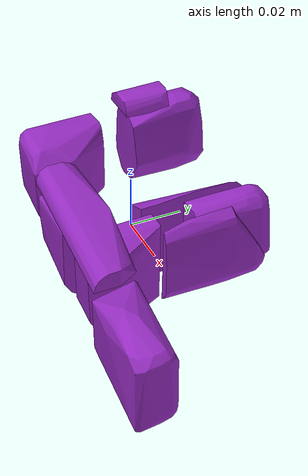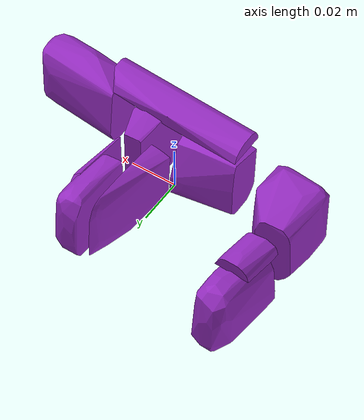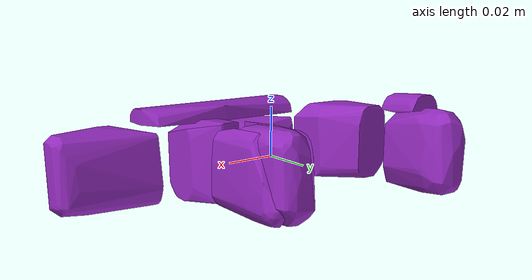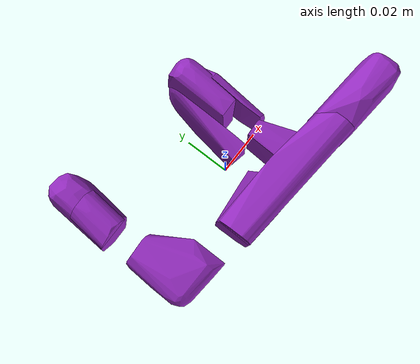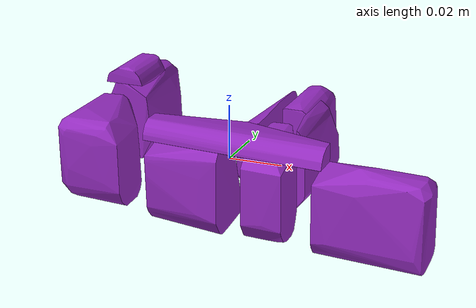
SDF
<?xml version='1.0' encoding='UTF-8'?>
<!-- This SDF was autogenerated by obj_to_drake_sdf.py -->
<sdf version="1.7">
  <model name="F_shape_texture">
    <link name="F_shape_texture">
      <inertial>
        <pose>0 0 0 0 0 0</pose>
        <mass>0.05</mass>
        <inertia>
          <ixx>4.1659227e-05</ixx>
          <iyy>9.8041381e-05</iyy>
          <izz>0.00012418487</izz>
          <ixy>2.2248495e-05</ixy>
          <ixz>1.6623365e-06</ixz>
          <iyz>-1.5121563e-06</iyz>
        </inertia>
      </inertial>
      <visual name="convex_0">
        <pose>0 0 0 0 0 0</pose>
        <geometry>
          <mesh>
            <uri>F_shape_texture_convex_0.obj</uri>
          </mesh>
        </geometry>
        <material>
          <diffuse>0.5882352941176471 0.17254901960784313 0.7607843137254902 1</diffuse>
        </material>
      </visual>
      <collision name="convex_0_volume">
        <pose>0 0 0 0 0 0</pose>
        <geometry>
          <mesh>
            <uri>F_shape_texture_convex_0.obj</uri>
          </mesh>
        </geometry>
        <drake:proximity_properties xmlns:drake="uri:drake">
          <drake:compliant_hydroelastic/>
          <drake:hydroelastic_modulus> 3.0e7 </drake:hydroelastic_modulus>
          <drake:mesh_resolution_hint> 0.02 </drake:mesh_resolution_hint>
          <drake:hunt_crossley_dissipation>10</drake:hunt_crossley_dissipation>
          <drake:mu_dynamic>0.3</drake:mu_dynamic>
        </drake:proximity_properties>
      </collision>
      <visual name="convex_1">
        <pose>0 0 0 0 0 0</pose>
        <geometry>
          <mesh>
            <uri>F_shape_texture_convex_1.obj</uri>
          </mesh>
        </geometry>
        <material>
          <diffuse>0.5882352941176471 0.17254901960784313 0.7607843137254902 1</diffuse>
        </material>
      </visual>
      <collision name="convex_1_volume">
        <pose>0 0 0 0 0 0</pose>
        <geometry>
          <mesh>
            <uri>F_shape_texture_convex_1.obj</uri>
          </mesh>
        </geometry>
        <drake:proximity_properties xmlns:drake="uri:drake">
          <drake:compliant_hydroelastic/>
          <drake:hydroelastic_modulus> 3.0e7 </drake:hydroelastic_modulus>
          <drake:mesh_resolution_hint> 0.02 </drake:mesh_resolution_hint>
          <drake:hunt_crossley_dissipation>10</drake:hunt_crossley_dissipation>
          <drake:mu_dynamic>0.3</drake:mu_dynamic>
        </drake:proximity_properties>
      </collision>
      <visual name="convex_2">
        <pose>0 0 0 0 0 0</pose>
        <geometry>
          <mesh>
            <uri>F_shape_texture_convex_2.obj</uri>
          </mesh>
        </geometry>
        <material>
          <diffuse>0.5882352941176471 0.17254901960784313 0.7607843137254902 1</diffuse>
        </material>
      </visual>
      <collision name="convex_2_volume">
        <pose>0 0 0 0 0 0</pose>
        <geometry>
          <mesh>
            <uri>F_shape_texture_convex_2.obj</uri>
          </mesh>
        </geometry>
        <drake:proximity_properties xmlns:drake="uri:drake">
          <drake:compliant_hydroelastic/>
          <drake:hydroelastic_modulus> 3.0e7 </drake:hydroelastic_modulus>
          <drake:mesh_resolution_hint> 0.02 </drake:mesh_resolution_hint>
          <drake:hunt_crossley_dissipation>10</drake:hunt_crossley_dissipation>
          <drake:mu_dynamic>0.3</drake:mu_dynamic>
        </drake:proximity_properties>
      </collision>
      <visual name="convex_3">
        <pose>0 0 0 0 0 0</pose>
        <geometry>
          <mesh>
            <uri>F_shape_texture_convex_3.obj</uri>
          </mesh>
        </geometry>
        <material>
          <diffuse>0.5882352941176471 0.17254901960784313 0.7607843137254902 1</diffuse>
        </material>
      </visual>
      <collision name="convex_3_volume">
        <pose>0 0 0 0 0 0</pose>
        <geometry>
          <mesh>
            <uri>F_shape_texture_convex_3.obj</uri>
          </mesh>
        </geometry>
        <drake:proximity_properties xmlns:drake="uri:drake">
          <drake:compliant_hydroelastic/>
          <drake:hydroelastic_modulus> 3.0e7 </drake:hydroelastic_modulus>
          <drake:mesh_resolution_hint> 0.02 </drake:mesh_resolution_hint>
          <drake:hunt_crossley_dissipation>10</drake:hunt_crossley_dissipation>
          <drake:mu_dynamic>0.3</drake:mu_dynamic>
        </drake:proximity_properties>
      </collision>
      <visual name="convex_4">
        <pose>0 0 0 0 0 0</pose>
        <geometry>
          <mesh>
            <uri>F_shape_texture_convex_4.obj</uri>
          </mesh>
        </geometry>
        <material>
          <diffuse>0.5882352941176471 0.17254901960784313 0.7607843137254902 1</diffuse>
        </material>
      </visual>
      <collision name="convex_4_volume">
        <pose>0 0 0 0 0 0</pose>
        <geometry>
          <mesh>
            <uri>F_shape_texture_convex_4.obj</uri>
          </mesh>
        </geometry>
        <drake:proximity_properties xmlns:drake="uri:drake">
          <drake:compliant_hydroelastic/>
          <drake:hydroelastic_modulus> 3.0e7 </drake:hydroelastic_modulus>
          <drake:mesh_resolution_hint> 0.02 </drake:mesh_resolution_hint>
          <drake:hunt_crossley_dissipation>10</drake:hunt_crossley_dissipation>
          <drake:mu_dynamic>0.3</drake:mu_dynamic>
        </drake:proximity_properties>
      </collision>
      <visual name="convex_5">
        <pose>0 0 0 0 0 0</pose>
        <geometry>
          <mesh>
            <uri>F_shape_texture_convex_5.obj</uri>
          </mesh>
        </geometry>
        <material>
          <diffuse>0.5882352941176471 0.17254901960784313 0.7607843137254902 1</diffuse>
        </material>
      </visual>
      <collision name="convex_5_volume">
        <pose>0 0 0 0 0 0</pose>
        <geometry>
          <mesh>
            <uri>F_shape_texture_convex_5.obj</uri>
          </mesh>
        </geometry>
        <drake:proximity_properties xmlns:drake="uri:drake">
          <drake:compliant_hydroelastic/>
          <drake:hydroelastic_modulus> 3.0e7 </drake:hydroelastic_modulus>
          <drake:mesh_resolution_hint> 0.02 </drake:mesh_resolution_hint>
          <drake:hunt_crossley_dissipation>10</drake:hunt_crossley_dissipation>
          <drake:mu_dynamic>0.3</drake:mu_dynamic>
        </drake:proximity_properties>
      </collision>
      <visual name="convex_6">
        <pose>0 0 0 0 0 0</pose>
        <geometry>
          <mesh>
            <uri>F_shape_texture_convex_6.obj</uri>
          </mesh>
        </geometry>
        <material>
          <diffuse>0.5882352941176471 0.17254901960784313 0.7607843137254902 1</diffuse>
        </material>
      </visual>
      <collision name="convex_6_volume">
        <pose>0 0 0 0 0 0</pose>
        <geometry>
          <mesh>
            <uri>F_shape_texture_convex_6.obj</uri>
          </mesh>
        </geometry>
        <drake:proximity_properties xmlns:drake="uri:drake">
          <drake:compliant_hydroelastic/>
          <drake:hydroelastic_modulus> 3.0e7 </drake:hydroelastic_modulus>
          <drake:mesh_resolution_hint> 0.02 </drake:mesh_resolution_hint>
          <drake:hunt_crossley_dissipation>10</drake:hunt_crossley_dissipation>
          <drake:mu_dynamic>0.3</drake:mu_dynamic>
        </drake:proximity_properties>
      </collision>
      <visual name="convex_7">
        <pose>0 0 0 0 0 0</pose>
        <geometry>
          <mesh>
            <uri>F_shape_texture_convex_7.obj</uri>
          </mesh>
        </geometry>
        <material>
          <diffuse>0.5882352941176471 0.17254901960784313 0.7607843137254902 1</diffuse>
        </material>
      </visual>
      <collision name="convex_7_volume">
        <pose>0 0 0 0 0 0</pose>
        <geometry>
          <mesh>
            <uri>F_shape_texture_convex_7.obj</uri>
          </mesh>
        </geometry>
        <drake:proximity_properties xmlns:drake="uri:drake">
          <drake:compliant_hydroelastic/>
          <drake:hydroelastic_modulus> 3.0e7 </drake:hydroelastic_modulus>
          <drake:mesh_resolution_hint> 0.02 </drake:mesh_resolution_hint>
          <drake:hunt_crossley_dissipation>10</drake:hunt_crossley_dissipation>
          <drake:mu_dynamic>0.3</drake:mu_dynamic>
        </drake:proximity_properties>
      </collision>
      <visual name="convex_8">
        <pose>0 0 0 0 0 0</pose>
        <geometry>
          <mesh>
            <uri>F_shape_texture_convex_8.obj</uri>
          </mesh>
        </geometry>
        <material>
          <diffuse>0.5882352941176471 0.17254901960784313 0.7607843137254902 1</diffuse>
        </material>
      </visual>
      <collision name="convex_8_volume">
        <pose>0 0 0 0 0 0</pose>
        <geometry>
          <mesh>
            <uri>F_shape_texture_convex_8.obj</uri>
          </mesh>
        </geometry>
        <drake:proximity_properties xmlns:drake="uri:drake">
          <drake:compliant_hydroelastic/>
          <drake:hydroelastic_modulus> 3.0e7 </drake:hydroelastic_modulus>
          <drake:mesh_resolution_hint> 0.02 </drake:mesh_resolution_hint>
          <drake:hunt_crossley_dissipation>10</drake:hunt_crossley_dissipation>
          <drake:mu_dynamic>0.3</drake:mu_dynamic>
        </drake:proximity_properties>
      </collision>
      <visual name="convex_9">
        <pose>0 0 0 0 0 0</pose>
        <geometry>
          <mesh>
            <uri>F_shape_texture_convex_9.obj</uri>
          </mesh>
        </geometry>
        <material>
          <diffuse>0.5882352941176471 0.17254901960784313 0.7607843137254902 1</diffuse>
        </material>
      </visual>
      <collision name="convex_9_volume">
        <pose>0 0 0 0 0 0</pose>
        <geometry>
          <mesh>
            <uri>F_shape_texture_convex_9.obj</uri>
          </mesh>
        </geometry>
        <drake:proximity_properties xmlns:drake="uri:drake">
          <drake:compliant_hydroelastic/>
          <drake:hydroelastic_modulus> 3.0e7 </drake:hydroelastic_modulus>
          <drake:mesh_resolution_hint> 0.02 </drake:mesh_resolution_hint>
          <drake:hunt_crossley_dissipation>10</drake:hunt_crossley_dissipation>
          <drake:mu_dynamic>0.3</drake:mu_dynamic>
        </drake:proximity_properties>
      </collision>
    </link>
  </model>
</sdf>
